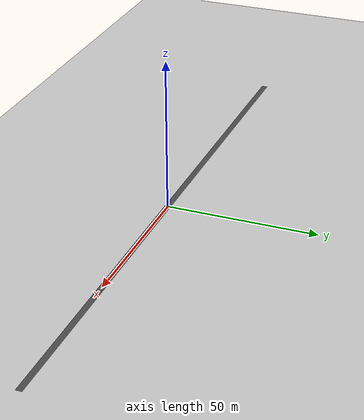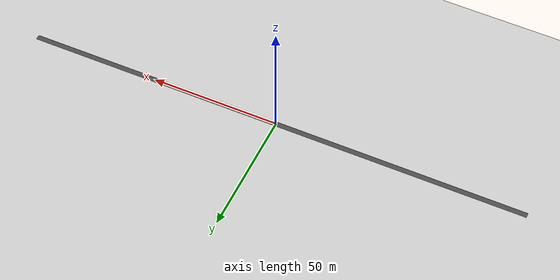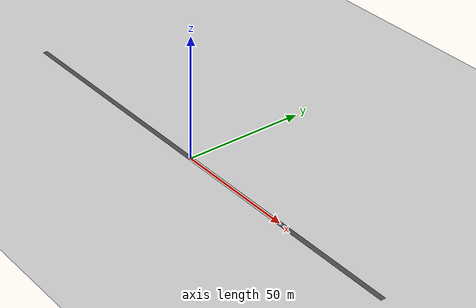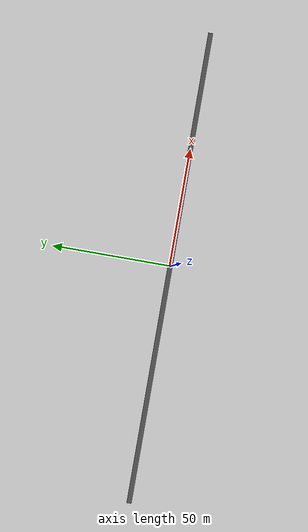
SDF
<sdf version='1.9'>
  <world name='flat_terrain'>
    <physics type="ode">
      <max_step_size>0.004</max_step_size>
      <real_time_factor>1.0</real_time_factor>
      <real_time_update_rate>250</real_time_update_rate>
    </physics>
    <plugin name='gz::sim::systems::Physics' filename='gz-sim-physics-system'/>
    <plugin name='gz::sim::systems::UserCommands' filename='gz-sim-user-commands-system'/>
    <plugin name='gz::sim::systems::SceneBroadcaster' filename='gz-sim-scene-broadcaster-system'/>
    <plugin name='gz::sim::systems::Contact' filename='gz-sim-contact-system'/>
    <plugin name='gz::sim::systems::Imu' filename='gz-sim-imu-system'/>
    <plugin name='gz::sim::systems::AirPressure' filename='gz-sim-air-pressure-system'/>
    <plugin name='gz::sim::systems::Sensors' filename='gz-sim-sensors-system'>
      <render_engine>ogre2</render_engine>
    </plugin>

    <spherical_coordinates>
      <surface_model>EARTH_WGS84</surface_model>
      <world_frame_orientation>ENU</world_frame_orientation>
      <latitude_deg>47.397742</latitude_deg>
      <longitude_deg>8.545594</longitude_deg>
      <elevation>488.0</elevation>
      <heading_deg>0</heading_deg>
    </spherical_coordinates>

    <gui fullscreen='false'>
      <plugin name='3D View' filename='GzScene3D'>
        <gz-gui>
          <title>3D View</title>
          <property type='bool' key='showTitleBar'>0</property>
          <property type='string' key='state'>docked</property>
        </gz-gui>
        <engine>ogre2</engine>
        <scene>scene</scene>
        <ambient_light>0.5984631152222222 0.5984631152222222 0.5984631152222222</ambient_light>
        <background_color>0.8984631152222222 0.8984631152222222 0.8984631152222222</background_color>
        <camera_pose>-1.8 0 1.0 0 0.08 0</camera_pose>
      </plugin>
      <plugin name='World control' filename='WorldControl'>
        <gz-gui>
          <title>World control</title>
          <property type='bool' key='showTitleBar'>0</property>
          <property type='bool' key='resizable'>0</property>
          <property type='double' key='height'>72</property>
          <property type='double' key='width'>121</property>
          <property type='double' key='z'>1</property>
          <property type='string' key='state'>floating</property>
          <anchors target='3D View'>
            <line own='left' target='left'/>
            <line own='bottom' target='bottom'/>
          </anchors>
        </gz-gui>
        <play_pause>1</play_pause>
        <step>1</step>
        <start_paused>1</start_paused>
      </plugin>
      <plugin name='World stats' filename='WorldStats'>
        <gz-gui>
          <title>World stats</title>
          <property type='bool' key='showTitleBar'>0</property>
          <property type='bool' key='resizable'>0</property>
          <property type='double' key='height'>110</property>
          <property type='double' key='width'>290</property>
          <property type='double' key='z'>1</property>
          <property type='string' key='state'>floating</property>
          <anchors target='3D View'>
            <line own='right' target='right'/>
            <line own='bottom' target='bottom'/>
          </anchors>
        </gz-gui>
        <sim_time>1</sim_time>
        <real_time>1</real_time>
        <real_time_factor>1</real_time_factor>
        <iterations>1</iterations>
      </plugin>
      <plugin name='Entity tree' filename='EntityTree'/>
    </gui>
    <gravity>0 0 -9.8</gravity>
    <magnetic_field>6e-06 2.3e-05 -4.2e-05</magnetic_field>
    <atmosphere type='adiabatic'/>
    <scene>
      <grid>false</grid>
      <ambient>0.4 0.4 0.4 1</ambient>
      <background>0.7 0.7 0.7 1</background>
      <shadows>true</shadows>
    </scene>

    <model name='ground_plane'>
      <static>true</static>
      <link name='link'>
        <collision name='collision'>
          <geometry>
            <plane>
              <normal>0 0 1</normal>
              <size>1 1</size>
            </plane>
          </geometry>
          <surface>
            <friction>
              <ode/>
            </friction>
            <bounce/>
            <contact/>
          </surface>
        </collision>
        <visual name='visual'>
          <geometry>
            <plane>
              <normal>0 0 1</normal>
              <size>2000 2000</size>
            </plane>
          </geometry>
          <material>
            <ambient>0.8 0.8 0.8 1</ambient>
            <diffuse>0.8 0.8 0.8 1</diffuse>
            <specular>0.8 0.8 0.8 1</specular>
          </material>
        </visual>
        <pose>0 0 0 0 -0 0</pose>
        <inertial>
          <pose>0 0 0 0 -0 0</pose>
          <mass>1</mass>
          <inertia>
            <ixx>1</ixx>
            <ixy>0</ixy>
            <ixz>0</ixz>
            <iyy>1</iyy>
            <iyz>0</iyz>
            <izz>1</izz>
          </inertia>
        </inertial>
        <enable_wind>false</enable_wind>
      </link>
      <pose>0 0 0 0 -0 0</pose>
      <self_collide>false</self_collide>
    </model>

    <!-- Runway marking: center line for takeoff/landing reference -->
    <model name='runway_marking'>
      <static>true</static>
      <link name='link'>
        <visual name='centerline'>
          <pose>0 0 0.001 0 0 0</pose>
          <geometry>
            <plane>
              <normal>0 0 1</normal>
              <size>200 2</size>
            </plane>
          </geometry>
          <material>
            <ambient>0.3 0.3 0.3 1</ambient>
            <diffuse>0.3 0.3 0.3 1</diffuse>
            <specular>0 0 0 1</specular>
          </material>
        </visual>
      </link>
      <pose>0 0 0 0 0 0</pose>
    </model>

    <light name='sunUTC' type='directional'>
      <pose>0 0 500 0 -0 0</pose>
      <cast_shadows>true</cast_shadows>
      <intensity>1</intensity>
      <direction>0.001 0.625 -0.78</direction>
      <diffuse>0.904 0.904 0.904 1</diffuse>
      <specular>0.271 0.271 0.271 1</specular>
      <attenuation>
        <range>2000</range>
        <linear>0</linear>
        <constant>1</constant>
        <quadratic>0</quadratic>
      </attenuation>
      <spot>
        <inner_angle>0</inner_angle>
        <outer_angle>0</outer_angle>
        <falloff>0</falloff>
      </spot>
    </light>
  </world>
</sdf>
